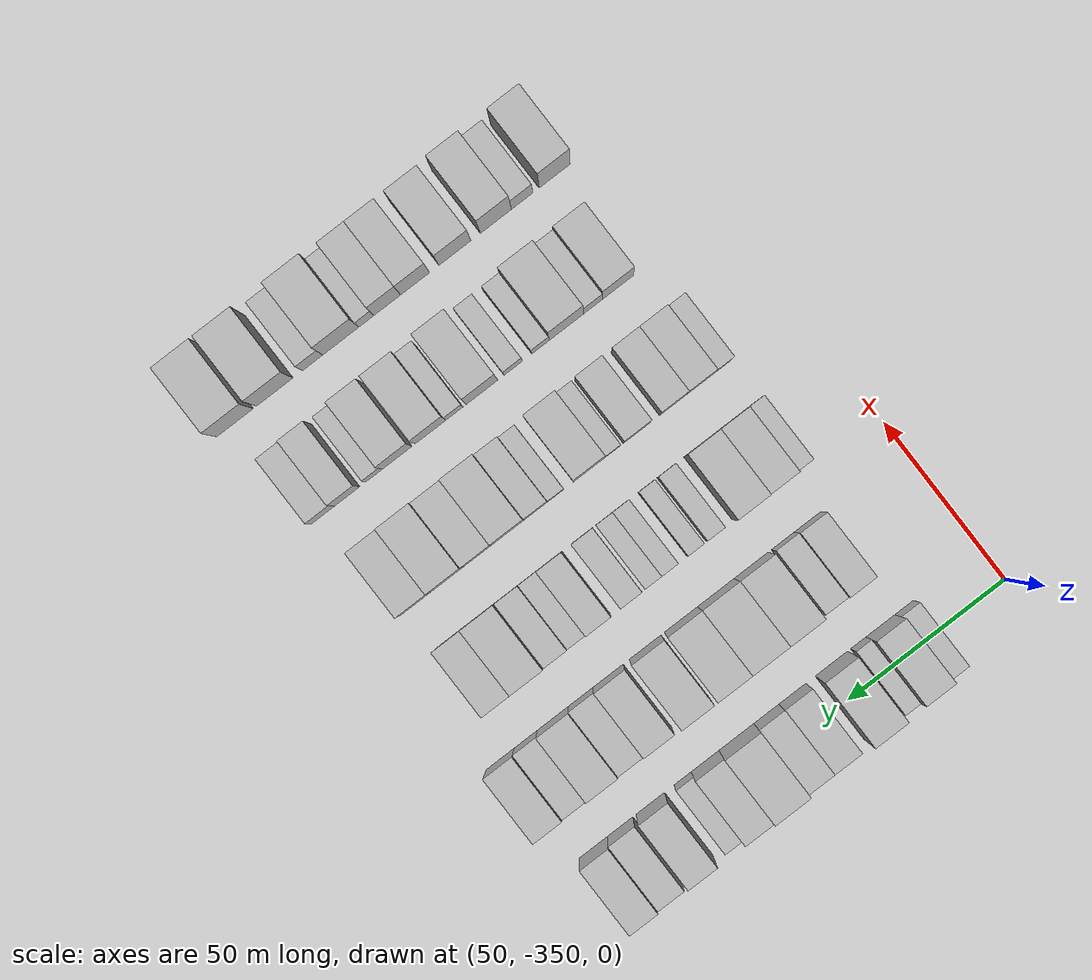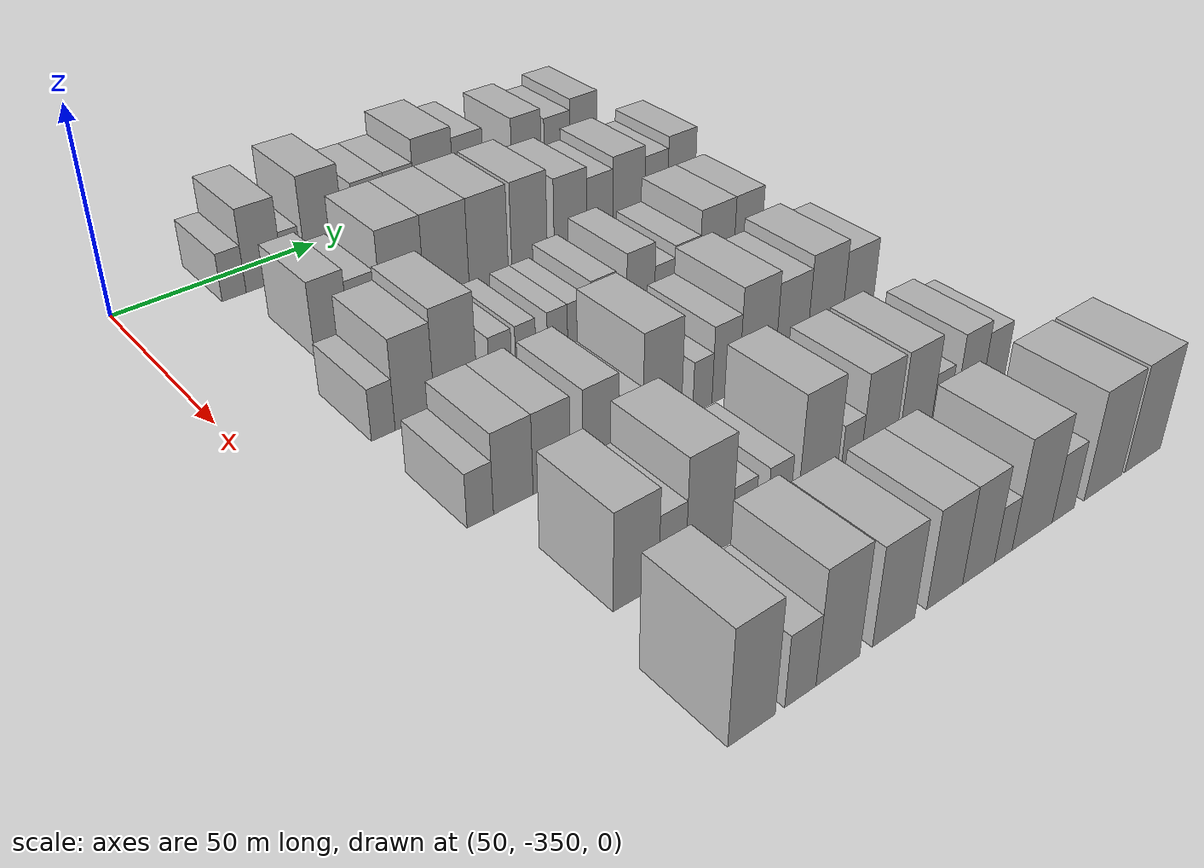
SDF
<sdf version="1.6">
 <world name="default">
  <model name="building_23">
   <static>1</static>
   <pose>50.0000 -325.5582 0 0.000000 0.000000 0.000000</pose>
   <link name="link">
    <pose>0 0 6.00 0 0 0</pose>
    <collision name="collision"><geometry><box><size>20.0000 5.8484 12.0000</size></box></geometry></collision>
    <visual name="visual">
     <cast_shadows>0</cast_shadows>
     <geometry><box><size>20.0000 5.8484 12.0000</size></box></geometry>
     <material>
      <script>
       <uri>model://HANNAS_wall/materials/scripts</uri>
       <uri>model://HANNAS_wall/materials/textures</uri>
       <name>vrc/HANNAS_wall</name>
      </script>
     </material>
    </visual>
   </link>
  </model>
  <model name="building_24">
   <static>1</static>
   <pose>50.0000 -318.0007 0 0.000000 0.000000 0.000000</pose>
   <link name="link">
    <pose>0 0 10.50 0 0 0</pose>
    <collision name="collision"><geometry><box><size>20.0000 9.2668 21.0000</size></box></geometry></collision>
    <visual name="visual">
     <cast_shadows>0</cast_shadows>
     <geometry><box><size>20.0000 9.2668 21.0000</size></box></geometry>
     <material>
      <script>
       <uri>model://HANNAS_wall/materials/scripts</uri>
       <uri>model://HANNAS_wall/materials/textures</uri>
       <name>vrc/HANNAS_wall</name>
      </script>
     </material>
    </visual>
   </link>
  </model>
  <model name="building_25">
   <static>1</static>
   <pose>50.0000 -310.9358 0 0.000000 0.000000 0.000000</pose>
   <link name="link">
    <pose>0 0 6.00 0 0 0</pose>
    <collision name="collision"><geometry><box><size>20.0000 4.8629 12.0000</size></box></geometry></collision>
    <visual name="visual">
     <cast_shadows>0</cast_shadows>
     <geometry><box><size>20.0000 4.8629 12.0000</size></box></geometry>
     <material>
      <script>
       <uri>model://HANNAS_wall/materials/scripts</uri>
       <uri>model://HANNAS_wall/materials/textures</uri>
       <name>vrc/HANNAS_wall</name>
      </script>
     </material>
    </visual>
   </link>
  </model>
  <model name="building_26">
   <static>1</static>
   <pose>50.0000 -302.3581 0 0.000000 0.000000 0.000000</pose>
   <link name="link">
    <pose>0 0 12.00 0 0 0</pose>
    <collision name="collision"><geometry><box><size>20.0000 10.2926 24.0000</size></box></geometry></collision>
    <visual name="visual">
     <cast_shadows>0</cast_shadows>
     <geometry><box><size>20.0000 10.2926 24.0000</size></box></geometry>
     <material>
      <script>
       <uri>model://HANNAS_wall/materials/scripts</uri>
       <uri>model://HANNAS_wall/materials/textures</uri>
       <name>vrc/HANNAS_wall</name>
      </script>
     </material>
    </visual>
   </link>
  </model>
  <model name="building_27">
   <static>1</static>
   <pose>50.0000 -289.9420 0 0.000000 0.000000 0.000000</pose>
   <link name="link">
    <pose>0 0 9.00 0 0 0</pose>
    <collision name="collision"><geometry><box><size>20.0000 8.5396 18.0000</size></box></geometry></collision>
    <visual name="visual">
     <cast_shadows>0</cast_shadows>
     <geometry><box><size>20.0000 8.5396 18.0000</size></box></geometry>
     <material>
      <script>
       <uri>model://HANNAS_wall/materials/scripts</uri>
       <uri>model://HANNAS_wall/materials/textures</uri>
       <name>vrc/HANNAS_wall</name>
      </script>
     </material>
    </visual>
   </link>
  </model>
  <model name="building_28">
   <static>1</static>
   <pose>50.0000 -281.6641 0 0.000000 0.000000 0.000000</pose>
   <link name="link">
    <pose>0 0 9.00 0 0 0</pose>
    <collision name="collision"><geometry><box><size>20.0000 8.0164 18.0000</size></box></geometry></collision>
    <visual name="visual">
     <cast_shadows>0</cast_shadows>
     <geometry><box><size>20.0000 8.0164 18.0000</size></box></geometry>
     <material>
      <script>
       <uri>model://HANNAS_wall/materials/scripts</uri>
       <uri>model://HANNAS_wall/materials/textures</uri>
       <name>vrc/HANNAS_wall</name>
      </script>
     </material>
    </visual>
   </link>
  </model>
  <model name="building_29">
   <static>1</static>
   <pose>50.0000 -272.1109 0 0.000000 0.000000 0.000000</pose>
   <link name="link">
    <pose>0 0 12.00 0 0 0</pose>
    <collision name="collision"><geometry><box><size>20.0000 11.0899 24.0000</size></box></geometry></collision>
    <visual name="visual">
     <cast_shadows>0</cast_shadows>
     <geometry><box><size>20.0000 11.0899 24.0000</size></box></geometry>
     <material>
      <script>
       <uri>model://HANNAS_wall/materials/scripts</uri>
       <uri>model://HANNAS_wall/materials/textures</uri>
       <name>vrc/HANNAS_wall</name>
      </script>
     </material>
    </visual>
   </link>
  </model>
  <model name="building_30">
   <static>1</static>
   <pose>50.0000 -262.1293 0 0.000000 0.000000 0.000000</pose>
   <link name="link">
    <pose>0 0 10.50 0 0 0</pose>
    <collision name="collision"><geometry><box><size>20.0000 8.8732 21.0000</size></box></geometry></collision>
    <visual name="visual">
     <cast_shadows>0</cast_shadows>
     <geometry><box><size>20.0000 8.8732 21.0000</size></box></geometry>
     <material>
      <script>
       <uri>model://HANNAS_wall/materials/scripts</uri>
       <uri>model://HANNAS_wall/materials/textures</uri>
       <name>vrc/HANNAS_wall</name>
      </script>
     </material>
    </visual>
   </link>
  </model>
  <model name="building_31">
   <static>1</static>
   <pose>50.0000 -254.9460 0 0.000000 0.000000 0.000000</pose>
   <link name="link">
    <pose>0 0 6.00 0 0 0</pose>
    <collision name="collision"><geometry><box><size>20.0000 5.4935 12.0000</size></box></geometry></collision>
    <visual name="visual">
     <cast_shadows>0</cast_shadows>
     <geometry><box><size>20.0000 5.4935 12.0000</size></box></geometry>
     <material>
      <script>
       <uri>model://HANNAS_wall/materials/scripts</uri>
       <uri>model://HANNAS_wall/materials/textures</uri>
       <name>vrc/HANNAS_wall</name>
      </script>
     </material>
    </visual>
   </link>
  </model>
  <model name="building_32">
   <static>1</static>
   <pose>50.0000 -244.6528 0 0.000000 0.000000 0.000000</pose>
   <link name="link">
    <pose>0 0 10.50 0 0 0</pose>
    <collision name="collision"><geometry><box><size>20.0000 9.0929 21.0000</size></box></geometry></collision>
    <visual name="visual">
     <cast_shadows>0</cast_shadows>
     <geometry><box><size>20.0000 9.0929 21.0000</size></box></geometry>
     <material>
      <script>
       <uri>model://HANNAS_wall/materials/scripts</uri>
       <uri>model://HANNAS_wall/materials/textures</uri>
       <name>vrc/HANNAS_wall</name>
      </script>
     </material>
    </visual>
   </link>
  </model>
  <model name="building_33">
   <static>1</static>
   <pose>50.0000 -235.0039 0 0.000000 0.000000 0.000000</pose>
   <link name="link">
    <pose>0 0 9.00 0 0 0</pose>
    <collision name="collision"><geometry><box><size>20.0000 8.2049 18.0000</size></box></geometry></collision>
    <visual name="visual">
     <cast_shadows>0</cast_shadows>
     <geometry><box><size>20.0000 8.2049 18.0000</size></box></geometry>
     <material>
      <script>
       <uri>model://HANNAS_wall/materials/scripts</uri>
       <uri>model://HANNAS_wall/materials/textures</uri>
       <name>vrc/HANNAS_wall</name>
      </script>
     </material>
    </visual>
   </link>
  </model>
  <model name="building_34">
   <static>1</static>
   <pose>50.0000 -226.4914 0 0.000000 0.000000 0.000000</pose>
   <link name="link">
    <pose>0 0 10.50 0 0 0</pose>
    <collision name="collision"><geometry><box><size>20.0000 8.8201 21.0000</size></box></geometry></collision>
    <visual name="visual">
     <cast_shadows>0</cast_shadows>
     <geometry><box><size>20.0000 8.8201 21.0000</size></box></geometry>
     <material>
      <script>
       <uri>model://HANNAS_wall/materials/scripts</uri>
       <uri>model://HANNAS_wall/materials/textures</uri>
       <name>vrc/HANNAS_wall</name>
      </script>
     </material>
    </visual>
   </link>
  </model>
  <model name="building_145">
   <static>1</static>
   <pose>82.0000 -319.2651 0 0.000000 0.000000 0.000000</pose>
   <link name="link">
    <pose>0 0 9.00 0 0 0</pose>
    <collision name="collision"><geometry><box><size>20.0000 8.3822 18.0000</size></box></geometry></collision>
    <visual name="visual">
     <cast_shadows>0</cast_shadows>
     <geometry><box><size>20.0000 8.3822 18.0000</size></box></geometry>
     <material>
      <script>
       <uri>model://HANNAS_wall/materials/scripts</uri>
       <uri>model://HANNAS_wall/materials/textures</uri>
       <name>vrc/HANNAS_wall</name>
      </script>
     </material>
    </visual>
   </link>
  </model>
  <model name="building_146">
   <static>1</static>
   <pose>82.0000 -311.4819 0 0.000000 0.000000 0.000000</pose>
   <link name="link">
    <pose>0 0 7.50 0 0 0</pose>
    <collision name="collision"><geometry><box><size>20.0000 7.1843 15.0000</size></box></geometry></collision>
    <visual name="visual">
     <cast_shadows>0</cast_shadows>
     <geometry><box><size>20.0000 7.1843 15.0000</size></box></geometry>
     <material>
      <script>
       <uri>model://HANNAS_wall/materials/scripts</uri>
       <uri>model://HANNAS_wall/materials/textures</uri>
       <name>vrc/HANNAS_wall</name>
      </script>
     </material>
    </visual>
   </link>
  </model>
  <model name="building_147">
   <static>1</static>
   <pose>82.0000 -301.4568 0 0.000000 0.000000 0.000000</pose>
   <link name="link">
    <pose>0 0 12.00 0 0 0</pose>
    <collision name="collision"><geometry><box><size>20.0000 10.8657 24.0000</size></box></geometry></collision>
    <visual name="visual">
     <cast_shadows>0</cast_shadows>
     <geometry><box><size>20.0000 10.8657 24.0000</size></box></geometry>
     <material>
      <script>
       <uri>model://HANNAS_wall/materials/scripts</uri>
       <uri>model://HANNAS_wall/materials/textures</uri>
       <name>vrc/HANNAS_wall</name>
      </script>
     </material>
    </visual>
   </link>
  </model>
  <model name="building_148">
   <static>1</static>
   <pose>82.0000 -290.2229 0 0.000000 0.000000 0.000000</pose>
   <link name="link">
    <pose>0 0 12.00 0 0 0</pose>
    <collision name="collision"><geometry><box><size>20.0000 11.6021 24.0000</size></box></geometry></collision>
    <visual name="visual">
     <cast_shadows>0</cast_shadows>
     <geometry><box><size>20.0000 11.6021 24.0000</size></box></geometry>
     <material>
      <script>
       <uri>model://HANNAS_wall/materials/scripts</uri>
       <uri>model://HANNAS_wall/materials/textures</uri>
       <name>vrc/HANNAS_wall</name>
      </script>
     </material>
    </visual>
   </link>
  </model>
  <model name="building_149">
   <static>1</static>
   <pose>82.0000 -279.0884 0 0.000000 0.000000 0.000000</pose>
   <link name="link">
    <pose>0 0 12.00 0 0 0</pose>
    <collision name="collision"><geometry><box><size>20.0000 10.6669 24.0000</size></box></geometry></collision>
    <visual name="visual">
     <cast_shadows>0</cast_shadows>
     <geometry><box><size>20.0000 10.6669 24.0000</size></box></geometry>
     <material>
      <script>
       <uri>model://HANNAS_wall/materials/scripts</uri>
       <uri>model://HANNAS_wall/materials/textures</uri>
       <name>vrc/HANNAS_wall</name>
      </script>
     </material>
    </visual>
   </link>
  </model>
  <model name="building_150">
   <static>1</static>
   <pose>82.0000 -267.7242 0 0.000000 0.000000 0.000000</pose>
   <link name="link">
    <pose>0 0 12.00 0 0 0</pose>
    <collision name="collision"><geometry><box><size>20.0000 10.0615 24.0000</size></box></geometry></collision>
    <visual name="visual">
     <cast_shadows>0</cast_shadows>
     <geometry><box><size>20.0000 10.0615 24.0000</size></box></geometry>
     <material>
      <script>
       <uri>model://HANNAS_wall/materials/scripts</uri>
       <uri>model://HANNAS_wall/materials/textures</uri>
       <name>vrc/HANNAS_wall</name>
      </script>
     </material>
    </visual>
   </link>
  </model>
  <model name="building_151">
   <static>1</static>
   <pose>82.0000 -255.9076 0 0.000000 0.000000 0.000000</pose>
   <link name="link">
    <pose>0 0 10.50 0 0 0</pose>
    <collision name="collision"><geometry><box><size>20.0000 9.5718 21.0000</size></box></geometry></collision>
    <visual name="visual">
     <cast_shadows>0</cast_shadows>
     <geometry><box><size>20.0000 9.5718 21.0000</size></box></geometry>
     <material>
      <script>
       <uri>model://HANNAS_wall/materials/scripts</uri>
       <uri>model://HANNAS_wall/materials/textures</uri>
       <name>vrc/HANNAS_wall</name>
      </script>
     </material>
    </visual>
   </link>
  </model>
  <model name="building_152">
   <static>1</static>
   <pose>82.0000 -247.1902 0 0.000000 0.000000 0.000000</pose>
   <link name="link">
    <pose>0 0 9.00 0 0 0</pose>
    <collision name="collision"><geometry><box><size>20.0000 7.8631 18.0000</size></box></geometry></collision>
    <visual name="visual">
     <cast_shadows>0</cast_shadows>
     <geometry><box><size>20.0000 7.8631 18.0000</size></box></geometry>
     <material>
      <script>
       <uri>model://HANNAS_wall/materials/scripts</uri>
       <uri>model://HANNAS_wall/materials/textures</uri>
       <name>vrc/HANNAS_wall</name>
      </script>
     </material>
    </visual>
   </link>
  </model>
  <model name="building_153">
   <static>1</static>
   <pose>82.0000 -238.3163 0 0.000000 0.000000 0.000000</pose>
   <link name="link">
    <pose>0 0 10.50 0 0 0</pose>
    <collision name="collision"><geometry><box><size>20.0000 9.8846 21.0000</size></box></geometry></collision>
    <visual name="visual">
     <cast_shadows>0</cast_shadows>
     <geometry><box><size>20.0000 9.8846 21.0000</size></box></geometry>
     <material>
      <script>
       <uri>model://HANNAS_wall/materials/scripts</uri>
       <uri>model://HANNAS_wall/materials/textures</uri>
       <name>vrc/HANNAS_wall</name>
      </script>
     </material>
    </visual>
   </link>
  </model>
  <model name="building_154">
   <static>1</static>
   <pose>82.0000 -229.7002 0 0.000000 0.000000 0.000000</pose>
   <link name="link">
    <pose>0 0 9.00 0 0 0</pose>
    <collision name="collision"><geometry><box><size>20.0000 7.3477 18.0000</size></box></geometry></collision>
    <visual name="visual">
     <cast_shadows>0</cast_shadows>
     <geometry><box><size>20.0000 7.3477 18.0000</size></box></geometry>
     <material>
      <script>
       <uri>model://HANNAS_wall/materials/scripts</uri>
       <uri>model://HANNAS_wall/materials/textures</uri>
       <name>vrc/HANNAS_wall</name>
      </script>
     </material>
    </visual>
   </link>
  </model>
  <model name="building_155">
   <static>1</static>
   <pose>82.0000 -221.5484 0 0.000000 0.000000 0.000000</pose>
   <link name="link">
    <pose>0 0 10.50 0 0 0</pose>
    <collision name="collision"><geometry><box><size>20.0000 8.9559 21.0000</size></box></geometry></collision>
    <visual name="visual">
     <cast_shadows>0</cast_shadows>
     <geometry><box><size>20.0000 8.9559 21.0000</size></box></geometry>
     <material>
      <script>
       <uri>model://HANNAS_wall/materials/scripts</uri>
       <uri>model://HANNAS_wall/materials/textures</uri>
       <name>vrc/HANNAS_wall</name>
      </script>
     </material>
    </visual>
   </link>
  </model>
  <model name="building_261">
   <static>1</static>
   <pose>114.0000 -326.6287 0 0.000000 0.000000 0.000000</pose>
   <link name="link">
    <pose>0 0 6.00 0 0 0</pose>
    <collision name="collision"><geometry><box><size>20.0000 5.3290 12.0000</size></box></geometry></collision>
    <visual name="visual">
     <cast_shadows>0</cast_shadows>
     <geometry><box><size>20.0000 5.3290 12.0000</size></box></geometry>
     <material>
      <script>
       <uri>model://HANNAS_wall/materials/scripts</uri>
       <uri>model://HANNAS_wall/materials/textures</uri>
       <name>vrc/HANNAS_wall</name>
      </script>
     </material>
    </visual>
   </link>
  </model>
  <model name="building_262">
   <static>1</static>
   <pose>114.0000 -319.3986 0 0.000000 0.000000 0.000000</pose>
   <link name="link">
    <pose>0 0 10.50 0 0 0</pose>
    <collision name="collision"><geometry><box><size>20.0000 9.1313 21.0000</size></box></geometry></collision>
    <visual name="visual">
     <cast_shadows>0</cast_shadows>
     <geometry><box><size>20.0000 9.1313 21.0000</size></box></geometry>
     <material>
      <script>
       <uri>model://HANNAS_wall/materials/scripts</uri>
       <uri>model://HANNAS_wall/materials/textures</uri>
       <name>vrc/HANNAS_wall</name>
      </script>
     </material>
    </visual>
   </link>
  </model>
  <model name="building_263">
   <static>1</static>
   <pose>114.0000 -309.7681 0 0.000000 0.000000 0.000000</pose>
   <link name="link">
    <pose>0 0 12.00 0 0 0</pose>
    <collision name="collision"><geometry><box><size>20.0000 10.1297 24.0000</size></box></geometry></collision>
    <visual name="visual">
     <cast_shadows>0</cast_shadows>
     <geometry><box><size>20.0000 10.1297 24.0000</size></box></geometry>
     <material>
      <script>
       <uri>model://HANNAS_wall/materials/scripts</uri>
       <uri>model://HANNAS_wall/materials/textures</uri>
       <name>vrc/HANNAS_wall</name>
      </script>
     </material>
    </visual>
   </link>
  </model>
  <model name="building_264">
   <static>1</static>
   <pose>114.0000 -298.9255 0 0.000000 0.000000 0.000000</pose>
   <link name="link">
    <pose>0 0 6.00 0 0 0</pose>
    <collision name="collision"><geometry><box><size>20.0000 5.5554 12.0000</size></box></geometry></collision>
    <visual name="visual">
     <cast_shadows>0</cast_shadows>
     <geometry><box><size>20.0000 5.5554 12.0000</size></box></geometry>
     <material>
      <script>
       <uri>model://HANNAS_wall/materials/scripts</uri>
       <uri>model://HANNAS_wall/materials/textures</uri>
       <name>vrc/HANNAS_wall</name>
      </script>
     </material>
    </visual>
   </link>
  </model>
  <model name="building_265">
   <static>1</static>
   <pose>114.0000 -292.5940 0 0.000000 0.000000 0.000000</pose>
   <link name="link">
    <pose>0 0 6.00 0 0 0</pose>
    <collision name="collision"><geometry><box><size>20.0000 5.1076 12.0000</size></box></geometry></collision>
    <visual name="visual">
     <cast_shadows>0</cast_shadows>
     <geometry><box><size>20.0000 5.1076 12.0000</size></box></geometry>
     <material>
      <script>
       <uri>model://HANNAS_wall/materials/scripts</uri>
       <uri>model://HANNAS_wall/materials/textures</uri>
       <name>vrc/HANNAS_wall</name>
      </script>
     </material>
    </visual>
   </link>
  </model>
  <model name="building_266">
   <static>1</static>
   <pose>114.0000 -284.4264 0 0.000000 0.000000 0.000000</pose>
   <link name="link">
    <pose>0 0 6.00 0 0 0</pose>
    <collision name="collision"><geometry><box><size>20.0000 5.2277 12.0000</size></box></geometry></collision>
    <visual name="visual">
     <cast_shadows>0</cast_shadows>
     <geometry><box><size>20.0000 5.2277 12.0000</size></box></geometry>
     <material>
      <script>
       <uri>model://HANNAS_wall/materials/scripts</uri>
       <uri>model://HANNAS_wall/materials/textures</uri>
       <name>vrc/HANNAS_wall</name>
      </script>
     </material>
    </visual>
   </link>
  </model>
  <model name="building_267">
   <static>1</static>
   <pose>114.0000 -279.1982 0 0.000000 0.000000 0.000000</pose>
   <link name="link">
    <pose>0 0 6.00 0 0 0</pose>
    <collision name="collision"><geometry><box><size>20.0000 5.2286 12.0000</size></box></geometry></collision>
    <visual name="visual">
     <cast_shadows>0</cast_shadows>
     <geometry><box><size>20.0000 5.2286 12.0000</size></box></geometry>
     <material>
      <script>
       <uri>model://HANNAS_wall/materials/scripts</uri>
       <uri>model://HANNAS_wall/materials/textures</uri>
       <name>vrc/HANNAS_wall</name>
      </script>
     </material>
    </visual>
   </link>
  </model>
  <model name="building_268">
   <static>1</static>
   <pose>114.0000 -272.2229 0 0.000000 0.000000 0.000000</pose>
   <link name="link">
    <pose>0 0 7.50 0 0 0</pose>
    <collision name="collision"><geometry><box><size>20.0000 6.7221 15.0000</size></box></geometry></collision>
    <visual name="visual">
     <cast_shadows>0</cast_shadows>
     <geometry><box><size>20.0000 6.7221 15.0000</size></box></geometry>
     <material>
      <script>
       <uri>model://HANNAS_wall/materials/scripts</uri>
       <uri>model://HANNAS_wall/materials/textures</uri>
       <name>vrc/HANNAS_wall</name>
      </script>
     </material>
    </visual>
   </link>
  </model>
  <model name="building_269">
   <static>1</static>
   <pose>114.0000 -261.9147 0 0.000000 0.000000 0.000000</pose>
   <link name="link">
    <pose>0 0 9.00 0 0 0</pose>
    <collision name="collision"><geometry><box><size>20.0000 7.8942 18.0000</size></box></geometry></collision>
    <visual name="visual">
     <cast_shadows>0</cast_shadows>
     <geometry><box><size>20.0000 7.8942 18.0000</size></box></geometry>
     <material>
      <script>
       <uri>model://HANNAS_wall/materials/scripts</uri>
       <uri>model://HANNAS_wall/materials/textures</uri>
       <name>vrc/HANNAS_wall</name>
      </script>
     </material>
    </visual>
   </link>
  </model>
  <model name="building_270">
   <static>1</static>
   <pose>114.0000 -255.0722 0 0.000000 0.000000 0.000000</pose>
   <link name="link">
    <pose>0 0 6.00 0 0 0</pose>
    <collision name="collision"><geometry><box><size>20.0000 5.7909 12.0000</size></box></geometry></collision>
    <visual name="visual">
     <cast_shadows>0</cast_shadows>
     <geometry><box><size>20.0000 5.7909 12.0000</size></box></geometry>
     <material>
      <script>
       <uri>model://HANNAS_wall/materials/scripts</uri>
       <uri>model://HANNAS_wall/materials/textures</uri>
       <name>vrc/HANNAS_wall</name>
      </script>
     </material>
    </visual>
   </link>
  </model>
  <model name="building_271">
   <static>1</static>
   <pose>114.0000 -248.5119 0 0.000000 0.000000 0.000000</pose>
   <link name="link">
    <pose>0 0 7.50 0 0 0</pose>
    <collision name="collision"><geometry><box><size>20.0000 7.3298 15.0000</size></box></geometry></collision>
    <visual name="visual">
     <cast_shadows>0</cast_shadows>
     <geometry><box><size>20.0000 7.3298 15.0000</size></box></geometry>
     <material>
      <script>
       <uri>model://HANNAS_wall/materials/scripts</uri>
       <uri>model://HANNAS_wall/materials/textures</uri>
       <name>vrc/HANNAS_wall</name>
      </script>
     </material>
    </visual>
   </link>
  </model>
  <model name="building_272">
   <static>1</static>
   <pose>114.0000 -239.7047 0 0.000000 0.000000 0.000000</pose>
   <link name="link">
    <pose>0 0 10.50 0 0 0</pose>
    <collision name="collision"><geometry><box><size>20.0000 10.2845 21.0000</size></box></geometry></collision>
    <visual name="visual">
     <cast_shadows>0</cast_shadows>
     <geometry><box><size>20.0000 10.2845 21.0000</size></box></geometry>
     <material>
      <script>
       <uri>model://HANNAS_wall/materials/scripts</uri>
       <uri>model://HANNAS_wall/materials/textures</uri>
       <name>vrc/HANNAS_wall</name>
      </script>
     </material>
    </visual>
   </link>
  </model>
  <model name="building_273">
   <static>1</static>
   <pose>114.0000 -230.2375 0 0.000000 0.000000 0.000000</pose>
   <link name="link">
    <pose>0 0 10.50 0 0 0</pose>
    <collision name="collision"><geometry><box><size>20.0000 8.6498 21.0000</size></box></geometry></collision>
    <visual name="visual">
     <cast_shadows>0</cast_shadows>
     <geometry><box><size>20.0000 8.6498 21.0000</size></box></geometry>
     <material>
      <script>
       <uri>model://HANNAS_wall/materials/scripts</uri>
       <uri>model://HANNAS_wall/materials/textures</uri>
       <name>vrc/HANNAS_wall</name>
      </script>
     </material>
    </visual>
   </link>
  </model>
  <model name="building_375">
   <static>1</static>
   <pose>146.0000 -326.4489 0 0.000000 0.000000 0.000000</pose>
   <link name="link">
    <pose>0 0 6.00 0 0 0</pose>
    <collision name="collision"><geometry><box><size>20.0000 5.6890 12.0000</size></box></geometry></collision>
    <visual name="visual">
     <cast_shadows>0</cast_shadows>
     <geometry><box><size>20.0000 5.6890 12.0000</size></box></geometry>
     <material>
      <script>
       <uri>model://HANNAS_wall/materials/scripts</uri>
       <uri>model://HANNAS_wall/materials/textures</uri>
       <name>vrc/HANNAS_wall</name>
      </script>
     </material>
    </visual>
   </link>
  </model>
  <model name="building_376">
   <static>1</static>
   <pose>146.0000 -319.2071 0 0.000000 0.000000 0.000000</pose>
   <link name="link">
    <pose>0 0 9.00 0 0 0</pose>
    <collision name="collision"><geometry><box><size>20.0000 8.7947 18.0000</size></box></geometry></collision>
    <visual name="visual">
     <cast_shadows>0</cast_shadows>
     <geometry><box><size>20.0000 8.7947 18.0000</size></box></geometry>
     <material>
      <script>
       <uri>model://HANNAS_wall/materials/scripts</uri>
       <uri>model://HANNAS_wall/materials/textures</uri>
       <name>vrc/HANNAS_wall</name>
      </script>
     </material>
    </visual>
   </link>
  </model>
  <model name="building_377">
   <static>1</static>
   <pose>146.0000 -310.5332 0 0.000000 0.000000 0.000000</pose>
   <link name="link">
    <pose>0 0 9.00 0 0 0</pose>
    <collision name="collision"><geometry><box><size>20.0000 8.5531 18.0000</size></box></geometry></collision>
    <visual name="visual">
     <cast_shadows>0</cast_shadows>
     <geometry><box><size>20.0000 8.5531 18.0000</size></box></geometry>
     <material>
      <script>
       <uri>model://HANNAS_wall/materials/scripts</uri>
       <uri>model://HANNAS_wall/materials/textures</uri>
       <name>vrc/HANNAS_wall</name>
      </script>
     </material>
    </visual>
   </link>
  </model>
  <model name="building_378">
   <static>1</static>
   <pose>146.0000 -298.9833 0 0.000000 0.000000 0.000000</pose>
   <link name="link">
    <pose>0 0 9.00 0 0 0</pose>
    <collision name="collision"><geometry><box><size>20.0000 8.5466 18.0000</size></box></geometry></collision>
    <visual name="visual">
     <cast_shadows>0</cast_shadows>
     <geometry><box><size>20.0000 8.5466 18.0000</size></box></geometry>
     <material>
      <script>
       <uri>model://HANNAS_wall/materials/scripts</uri>
       <uri>model://HANNAS_wall/materials/textures</uri>
       <name>vrc/HANNAS_wall</name>
      </script>
     </material>
    </visual>
   </link>
  </model>
  <model name="building_379">
   <static>1</static>
   <pose>146.0000 -291.2158 0 0.000000 0.000000 0.000000</pose>
   <link name="link">
    <pose>0 0 6.00 0 0 0</pose>
    <collision name="collision"><geometry><box><size>20.0000 4.9885 12.0000</size></box></geometry></collision>
    <visual name="visual">
     <cast_shadows>0</cast_shadows>
     <geometry><box><size>20.0000 4.9885 12.0000</size></box></geometry>
     <material>
      <script>
       <uri>model://HANNAS_wall/materials/scripts</uri>
       <uri>model://HANNAS_wall/materials/textures</uri>
       <name>vrc/HANNAS_wall</name>
      </script>
     </material>
    </visual>
   </link>
  </model>
  <model name="building_380">
   <static>1</static>
   <pose>146.0000 -283.7741 0 0.000000 0.000000 0.000000</pose>
   <link name="link">
    <pose>0 0 12.00 0 0 0</pose>
    <collision name="collision"><geometry><box><size>20.0000 9.8948 24.0000</size></box></geometry></collision>
    <visual name="visual">
     <cast_shadows>0</cast_shadows>
     <geometry><box><size>20.0000 9.8948 24.0000</size></box></geometry>
     <material>
      <script>
       <uri>model://HANNAS_wall/materials/scripts</uri>
       <uri>model://HANNAS_wall/materials/textures</uri>
       <name>vrc/HANNAS_wall</name>
      </script>
     </material>
    </visual>
   </link>
  </model>
  <model name="building_381">
   <static>1</static>
   <pose>146.0000 -273.2658 0 0.000000 0.000000 0.000000</pose>
   <link name="link">
    <pose>0 0 6.00 0 0 0</pose>
    <collision name="collision"><geometry><box><size>20.0000 5.1219 12.0000</size></box></geometry></collision>
    <visual name="visual">
     <cast_shadows>0</cast_shadows>
     <geometry><box><size>20.0000 5.1219 12.0000</size></box></geometry>
     <material>
      <script>
       <uri>model://HANNAS_wall/materials/scripts</uri>
       <uri>model://HANNAS_wall/materials/textures</uri>
       <name>vrc/HANNAS_wall</name>
      </script>
     </material>
    </visual>
   </link>
  </model>
  <model name="building_382">
   <static>1</static>
   <pose>146.0000 -267.0562 0 0.000000 0.000000 0.000000</pose>
   <link name="link">
    <pose>0 0 9.00 0 0 0</pose>
    <collision name="collision"><geometry><box><size>20.0000 7.2972 18.0000</size></box></geometry></collision>
    <visual name="visual">
     <cast_shadows>0</cast_shadows>
     <geometry><box><size>20.0000 7.2972 18.0000</size></box></geometry>
     <material>
      <script>
       <uri>model://HANNAS_wall/materials/scripts</uri>
       <uri>model://HANNAS_wall/materials/textures</uri>
       <name>vrc/HANNAS_wall</name>
      </script>
     </material>
    </visual>
   </link>
  </model>
  <model name="building_383">
   <static>1</static>
   <pose>146.0000 -258.3271 0 0.000000 0.000000 0.000000</pose>
   <link name="link">
    <pose>0 0 12.00 0 0 0</pose>
    <collision name="collision"><geometry><box><size>20.0000 10.1611 24.0000</size></box></geometry></collision>
    <visual name="visual">
     <cast_shadows>0</cast_shadows>
     <geometry><box><size>20.0000 10.1611 24.0000</size></box></geometry>
     <material>
      <script>
       <uri>model://HANNAS_wall/materials/scripts</uri>
       <uri>model://HANNAS_wall/materials/textures</uri>
       <name>vrc/HANNAS_wall</name>
      </script>
     </material>
    </visual>
   </link>
  </model>
  <model name="building_384">
   <static>1</static>
   <pose>146.0000 -248.6407 0 0.000000 0.000000 0.000000</pose>
   <link name="link">
    <pose>0 0 10.50 0 0 0</pose>
    <collision name="collision"><geometry><box><size>20.0000 9.2118 21.0000</size></box></geometry></collision>
    <visual name="visual">
     <cast_shadows>0</cast_shadows>
     <geometry><box><size>20.0000 9.2118 21.0000</size></box></geometry>
     <material>
      <script>
       <uri>model://HANNAS_wall/materials/scripts</uri>
       <uri>model://HANNAS_wall/materials/textures</uri>
       <name>vrc/HANNAS_wall</name>
      </script>
     </material>
    </visual>
   </link>
  </model>
  <model name="building_385">
   <static>1</static>
   <pose>146.0000 -238.8342 0 0.000000 0.000000 0.000000</pose>
   <link name="link">
    <pose>0 0 12.00 0 0 0</pose>
    <collision name="collision"><geometry><box><size>20.0000 10.4011 24.0000</size></box></geometry></collision>
    <visual name="visual">
     <cast_shadows>0</cast_shadows>
     <geometry><box><size>20.0000 10.4011 24.0000</size></box></geometry>
     <material>
      <script>
       <uri>model://HANNAS_wall/materials/scripts</uri>
       <uri>model://HANNAS_wall/materials/textures</uri>
       <name>vrc/HANNAS_wall</name>
      </script>
     </material>
    </visual>
   </link>
  </model>
  <model name="building_386">
   <static>1</static>
   <pose>146.0000 -228.8628 0 0.000000 0.000000 0.000000</pose>
   <link name="link">
    <pose>0 0 10.50 0 0 0</pose>
    <collision name="collision"><geometry><box><size>20.0000 9.5417 21.0000</size></box></geometry></collision>
    <visual name="visual">
     <cast_shadows>0</cast_shadows>
     <geometry><box><size>20.0000 9.5417 21.0000</size></box></geometry>
     <material>
      <script>
       <uri>model://HANNAS_wall/materials/scripts</uri>
       <uri>model://HANNAS_wall/materials/textures</uri>
       <name>vrc/HANNAS_wall</name>
      </script>
     </material>
    </visual>
   </link>
  </model>
  <model name="building_500">
   <static>1</static>
   <pose>178.0000 -317.5527 0 0.000000 0.000000 0.000000</pose>
   <link name="link">
    <pose>0 0 10.50 0 0 0</pose>
    <collision name="collision"><geometry><box><size>20.0000 9.8525 21.0000</size></box></geometry></collision>
    <visual name="visual">
     <cast_shadows>0</cast_shadows>
     <geometry><box><size>20.0000 9.8525 21.0000</size></box></geometry>
     <material>
      <script>
       <uri>model://HANNAS_wall/materials/scripts</uri>
       <uri>model://HANNAS_wall/materials/textures</uri>
       <name>vrc/HANNAS_wall</name>
      </script>
     </material>
    </visual>
   </link>
  </model>
  <model name="building_501">
   <static>1</static>
   <pose>178.0000 -309.6091 0 0.000000 0.000000 0.000000</pose>
   <link name="link">
    <pose>0 0 7.50 0 0 0</pose>
    <collision name="collision"><geometry><box><size>20.0000 6.0348 15.0000</size></box></geometry></collision>
    <visual name="visual">
     <cast_shadows>0</cast_shadows>
     <geometry><box><size>20.0000 6.0348 15.0000</size></box></geometry>
     <material>
      <script>
       <uri>model://HANNAS_wall/materials/scripts</uri>
       <uri>model://HANNAS_wall/materials/textures</uri>
       <name>vrc/HANNAS_wall</name>
      </script>
     </material>
    </visual>
   </link>
  </model>
  <model name="building_502">
   <static>1</static>
   <pose>178.0000 -301.1922 0 0.000000 0.000000 0.000000</pose>
   <link name="link">
    <pose>0 0 12.00 0 0 0</pose>
    <collision name="collision"><geometry><box><size>20.0000 10.7988 24.0000</size></box></geometry></collision>
    <visual name="visual">
     <cast_shadows>0</cast_shadows>
     <geometry><box><size>20.0000 10.7988 24.0000</size></box></geometry>
     <material>
      <script>
       <uri>model://HANNAS_wall/materials/scripts</uri>
       <uri>model://HANNAS_wall/materials/textures</uri>
       <name>vrc/HANNAS_wall</name>
      </script>
     </material>
    </visual>
   </link>
  </model>
  <model name="building_503">
   <static>1</static>
   <pose>178.0000 -293.0245 0 0.000000 0.000000 0.000000</pose>
   <link name="link">
    <pose>0 0 6.00 0 0 0</pose>
    <collision name="collision"><geometry><box><size>20.0000 5.5367 12.0000</size></box></geometry></collision>
    <visual name="visual">
     <cast_shadows>0</cast_shadows>
     <geometry><box><size>20.0000 5.5367 12.0000</size></box></geometry>
     <material>
      <script>
       <uri>model://HANNAS_wall/materials/scripts</uri>
       <uri>model://HANNAS_wall/materials/textures</uri>
       <name>vrc/HANNAS_wall</name>
      </script>
     </material>
    </visual>
   </link>
  </model>
  <model name="building_504">
   <static>1</static>
   <pose>178.0000 -284.3356 0 0.000000 0.000000 0.000000</pose>
   <link name="link">
    <pose>0 0 6.00 0 0 0</pose>
    <collision name="collision"><geometry><box><size>20.0000 5.8410 12.0000</size></box></geometry></collision>
    <visual name="visual">
     <cast_shadows>0</cast_shadows>
     <geometry><box><size>20.0000 5.8410 12.0000</size></box></geometry>
     <material>
      <script>
       <uri>model://HANNAS_wall/materials/scripts</uri>
       <uri>model://HANNAS_wall/materials/textures</uri>
       <name>vrc/HANNAS_wall</name>
      </script>
     </material>
    </visual>
   </link>
  </model>
  <model name="building_505">
   <static>1</static>
   <pose>178.0000 -274.3993 0 0.000000 0.000000 0.000000</pose>
   <link name="link">
    <pose>0 0 12.00 0 0 0</pose>
    <collision name="collision"><geometry><box><size>20.0000 10.0318 24.0000</size></box></geometry></collision>
    <visual name="visual">
     <cast_shadows>0</cast_shadows>
     <geometry><box><size>20.0000 10.0318 24.0000</size></box></geometry>
     <material>
      <script>
       <uri>model://HANNAS_wall/materials/scripts</uri>
       <uri>model://HANNAS_wall/materials/textures</uri>
       <name>vrc/HANNAS_wall</name>
      </script>
     </material>
    </visual>
   </link>
  </model>
  <model name="building_506">
   <static>1</static>
   <pose>178.0000 -265.6634 0 0.000000 0.000000 0.000000</pose>
   <link name="link">
    <pose>0 0 6.00 0 0 0</pose>
    <collision name="collision"><geometry><box><size>20.0000 5.4400 12.0000</size></box></geometry></collision>
    <visual name="visual">
     <cast_shadows>0</cast_shadows>
     <geometry><box><size>20.0000 5.4400 12.0000</size></box></geometry>
     <material>
      <script>
       <uri>model://HANNAS_wall/materials/scripts</uri>
       <uri>model://HANNAS_wall/materials/textures</uri>
       <name>vrc/HANNAS_wall</name>
      </script>
     </material>
    </visual>
   </link>
  </model>
  <model name="building_507">
   <static>1</static>
   <pose>178.0000 -258.0468 0 0.000000 0.000000 0.000000</pose>
   <link name="link">
    <pose>0 0 10.50 0 0 0</pose>
    <collision name="collision"><geometry><box><size>20.0000 9.7933 21.0000</size></box></geometry></collision>
    <visual name="visual">
     <cast_shadows>0</cast_shadows>
     <geometry><box><size>20.0000 9.7933 21.0000</size></box></geometry>
     <material>
      <script>
       <uri>model://HANNAS_wall/materials/scripts</uri>
       <uri>model://HANNAS_wall/materials/textures</uri>
       <name>vrc/HANNAS_wall</name>
      </script>
     </material>
    </visual>
   </link>
  </model>
  <model name="building_508">
   <static>1</static>
   <pose>178.0000 -247.4368 0 0.000000 0.000000 0.000000</pose>
   <link name="link">
    <pose>0 0 10.50 0 0 0</pose>
    <collision name="collision"><geometry><box><size>20.0000 9.4268 21.0000</size></box></geometry></collision>
    <visual name="visual">
     <cast_shadows>0</cast_shadows>
     <geometry><box><size>20.0000 9.4268 21.0000</size></box></geometry>
     <material>
      <script>
       <uri>model://HANNAS_wall/materials/scripts</uri>
       <uri>model://HANNAS_wall/materials/textures</uri>
       <name>vrc/HANNAS_wall</name>
      </script>
     </material>
    </visual>
   </link>
  </model>
  <model name="building_509">
   <static>1</static>
   <pose>178.0000 -240.0914 0 0.000000 0.000000 0.000000</pose>
   <link name="link">
    <pose>0 0 6.00 0 0 0</pose>
    <collision name="collision"><geometry><box><size>20.0000 5.2639 12.0000</size></box></geometry></collision>
    <visual name="visual">
     <cast_shadows>0</cast_shadows>
     <geometry><box><size>20.0000 5.2639 12.0000</size></box></geometry>
     <material>
      <script>
       <uri>model://HANNAS_wall/materials/scripts</uri>
       <uri>model://HANNAS_wall/materials/textures</uri>
       <name>vrc/HANNAS_wall</name>
      </script>
     </material>
    </visual>
   </link>
  </model>
  <model name="building_510">
   <static>1</static>
   <pose>178.0000 -231.4427 0 0.000000 0.000000 0.000000</pose>
   <link name="link">
    <pose>0 0 9.00 0 0 0</pose>
    <collision name="collision"><geometry><box><size>20.0000 8.0336 18.0000</size></box></geometry></collision>
    <visual name="visual">
     <cast_shadows>0</cast_shadows>
     <geometry><box><size>20.0000 8.0336 18.0000</size></box></geometry>
     <material>
      <script>
       <uri>model://HANNAS_wall/materials/scripts</uri>
       <uri>model://HANNAS_wall/materials/textures</uri>
       <name>vrc/HANNAS_wall</name>
      </script>
     </material>
    </visual>
   </link>
  </model>
  <model name="building_511">
   <static>1</static>
   <pose>178.0000 -223.8288 0 0.000000 0.000000 0.000000</pose>
   <link name="link">
    <pose>0 0 7.50 0 0 0</pose>
    <collision name="collision"><geometry><box><size>20.0000 7.1941 15.0000</size></box></geometry></collision>
    <visual name="visual">
     <cast_shadows>0</cast_shadows>
     <geometry><box><size>20.0000 7.1941 15.0000</size></box></geometry>
     <material>
      <script>
       <uri>model://HANNAS_wall/materials/scripts</uri>
       <uri>model://HANNAS_wall/materials/textures</uri>
       <name>vrc/HANNAS_wall</name>
      </script>
     </material>
    </visual>
   </link>
  </model>
  <model name="building_615">
   <static>1</static>
   <pose>210.0000 -322.1967 0 0.000000 0.000000 0.000000</pose>
   <link name="link">
    <pose>0 0 12.00 0 0 0</pose>
    <collision name="collision"><geometry><box><size>20.0000 9.8420 24.0000</size></box></geometry></collision>
    <visual name="visual">
     <cast_shadows>0</cast_shadows>
     <geometry><box><size>20.0000 9.8420 24.0000</size></box></geometry>
     <material>
      <script>
       <uri>model://HANNAS_wall/materials/scripts</uri>
       <uri>model://HANNAS_wall/materials/textures</uri>
       <name>vrc/HANNAS_wall</name>
      </script>
     </material>
    </visual>
   </link>
  </model>
  <model name="building_616">
   <static>1</static>
   <pose>210.0000 -311.8684 0 0.000000 0.000000 0.000000</pose>
   <link name="link">
    <pose>0 0 7.50 0 0 0</pose>
    <collision name="collision"><geometry><box><size>20.0000 6.8146 15.0000</size></box></geometry></collision>
    <visual name="visual">
     <cast_shadows>0</cast_shadows>
     <geometry><box><size>20.0000 6.8146 15.0000</size></box></geometry>
     <material>
      <script>
       <uri>model://HANNAS_wall/materials/scripts</uri>
       <uri>model://HANNAS_wall/materials/textures</uri>
       <name>vrc/HANNAS_wall</name>
      </script>
     </material>
    </visual>
   </link>
  </model>
  <model name="building_617">
   <static>1</static>
   <pose>210.0000 -303.5051 0 0.000000 0.000000 0.000000</pose>
   <link name="link">
    <pose>0 0 12.00 0 0 0</pose>
    <collision name="collision"><geometry><box><size>20.0000 9.9120 24.0000</size></box></geometry></collision>
    <visual name="visual">
     <cast_shadows>0</cast_shadows>
     <geometry><box><size>20.0000 9.9120 24.0000</size></box></geometry>
     <material>
      <script>
       <uri>model://HANNAS_wall/materials/scripts</uri>
       <uri>model://HANNAS_wall/materials/textures</uri>
       <name>vrc/HANNAS_wall</name>
      </script>
     </material>
    </visual>
   </link>
  </model>
  <model name="building_618">
   <static>1</static>
   <pose>210.0000 -290.4490 0 0.000000 0.000000 0.000000</pose>
   <link name="link">
    <pose>0 0 10.50 0 0 0</pose>
    <collision name="collision"><geometry><box><size>20.0000 10.2002 21.0000</size></box></geometry></collision>
    <visual name="visual">
     <cast_shadows>0</cast_shadows>
     <geometry><box><size>20.0000 10.2002 21.0000</size></box></geometry>
     <material>
      <script>
       <uri>model://HANNAS_wall/materials/scripts</uri>
       <uri>model://HANNAS_wall/materials/textures</uri>
       <name>vrc/HANNAS_wall</name>
      </script>
     </material>
    </visual>
   </link>
  </model>
  <model name="building_619">
   <static>1</static>
   <pose>210.0000 -277.7563 0 0.000000 0.000000 0.000000</pose>
   <link name="link">
    <pose>0 0 10.50 0 0 0</pose>
    <collision name="collision"><geometry><box><size>20.0000 9.1851 21.0000</size></box></geometry></collision>
    <visual name="visual">
     <cast_shadows>0</cast_shadows>
     <geometry><box><size>20.0000 9.1851 21.0000</size></box></geometry>
     <material>
      <script>
       <uri>model://HANNAS_wall/materials/scripts</uri>
       <uri>model://HANNAS_wall/materials/textures</uri>
       <name>vrc/HANNAS_wall</name>
      </script>
     </material>
    </visual>
   </link>
  </model>
  <model name="building_620">
   <static>1</static>
   <pose>210.0000 -268.9171 0 0.000000 0.000000 0.000000</pose>
   <link name="link">
    <pose>0 0 10.50 0 0 0</pose>
    <collision name="collision"><geometry><box><size>20.0000 8.4933 21.0000</size></box></geometry></collision>
    <visual name="visual">
     <cast_shadows>0</cast_shadows>
     <geometry><box><size>20.0000 8.4933 21.0000</size></box></geometry>
     <material>
      <script>
       <uri>model://HANNAS_wall/materials/scripts</uri>
       <uri>model://HANNAS_wall/materials/textures</uri>
       <name>vrc/HANNAS_wall</name>
      </script>
     </material>
    </visual>
   </link>
  </model>
  <model name="building_621">
   <static>1</static>
   <pose>210.0000 -262.2607 0 0.000000 0.000000 0.000000</pose>
   <link name="link">
    <pose>0 0 6.00 0 0 0</pose>
    <collision name="collision"><geometry><box><size>20.0000 4.8195 12.0000</size></box></geometry></collision>
    <visual name="visual">
     <cast_shadows>0</cast_shadows>
     <geometry><box><size>20.0000 4.8195 12.0000</size></box></geometry>
     <material>
      <script>
       <uri>model://HANNAS_wall/materials/scripts</uri>
       <uri>model://HANNAS_wall/materials/textures</uri>
       <name>vrc/HANNAS_wall</name>
      </script>
     </material>
    </visual>
   </link>
  </model>
  <model name="building_622">
   <static>1</static>
   <pose>210.0000 -254.1245 0 0.000000 0.000000 0.000000</pose>
   <link name="link">
    <pose>0 0 12.00 0 0 0</pose>
    <collision name="collision"><geometry><box><size>20.0000 11.4528 24.0000</size></box></geometry></collision>
    <visual name="visual">
     <cast_shadows>0</cast_shadows>
     <geometry><box><size>20.0000 11.4528 24.0000</size></box></geometry>
     <material>
      <script>
       <uri>model://HANNAS_wall/materials/scripts</uri>
       <uri>model://HANNAS_wall/materials/textures</uri>
       <name>vrc/HANNAS_wall</name>
      </script>
     </material>
    </visual>
   </link>
  </model>
  <model name="building_623">
   <static>1</static>
   <pose>210.0000 -245.1415 0 0.000000 0.000000 0.000000</pose>
   <link name="link">
    <pose>0 0 7.50 0 0 0</pose>
    <collision name="collision"><geometry><box><size>20.0000 6.5134 15.0000</size></box></geometry></collision>
    <visual name="visual">
     <cast_shadows>0</cast_shadows>
     <geometry><box><size>20.0000 6.5134 15.0000</size></box></geometry>
     <material>
      <script>
       <uri>model://HANNAS_wall/materials/scripts</uri>
       <uri>model://HANNAS_wall/materials/textures</uri>
       <name>vrc/HANNAS_wall</name>
      </script>
     </material>
    </visual>
   </link>
  </model>
  <model name="building_624">
   <static>1</static>
   <pose>210.0000 -233.0566 0 0.000000 0.000000 0.000000</pose>
   <link name="link">
    <pose>0 0 12.00 0 0 0</pose>
    <collision name="collision"><geometry><box><size>20.0000 11.6564 24.0000</size></box></geometry></collision>
    <visual name="visual">
     <cast_shadows>0</cast_shadows>
     <geometry><box><size>20.0000 11.6564 24.0000</size></box></geometry>
     <material>
      <script>
       <uri>model://HANNAS_wall/materials/scripts</uri>
       <uri>model://HANNAS_wall/materials/textures</uri>
       <name>vrc/HANNAS_wall</name>
      </script>
     </material>
    </visual>
   </link>
  </model>
  <model name="building_625">
   <static>1</static>
   <pose>210.0000 -220.4119 0 0.000000 0.000000 0.000000</pose>
   <link name="link">
    <pose>0 0 12.00 0 0 0</pose>
    <collision name="collision"><geometry><box><size>20.0000 11.6330 24.0000</size></box></geometry></collision>
    <visual name="visual">
     <cast_shadows>0</cast_shadows>
     <geometry><box><size>20.0000 11.6330 24.0000</size></box></geometry>
     <material>
      <script>
       <uri>model://HANNAS_wall/materials/scripts</uri>
       <uri>model://HANNAS_wall/materials/textures</uri>
       <name>vrc/HANNAS_wall</name>
      </script>
     </material>
    </visual>
   </link>
  </model>
 </world>
</sdf>
